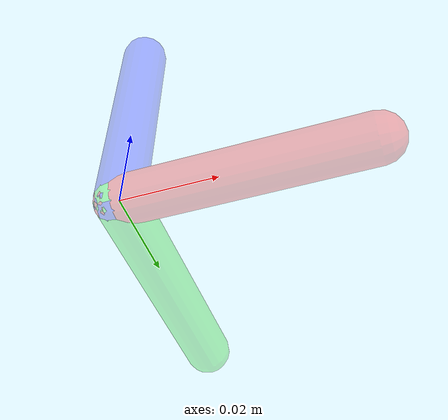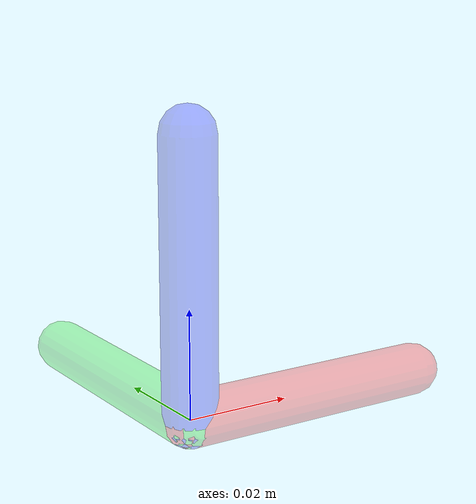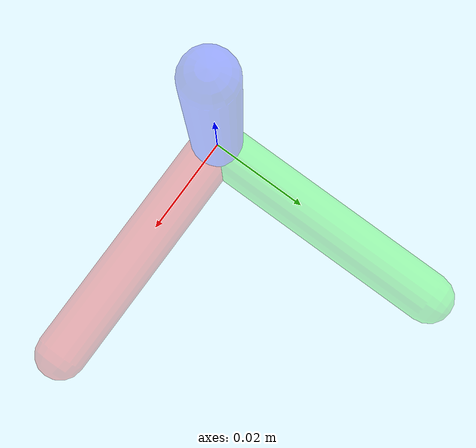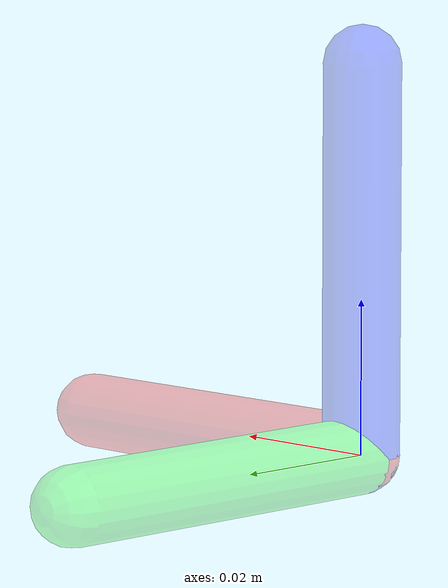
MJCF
<mujoco model="target_frame">
    <worldbody>
        <body name="frame_origin">
            <geom type="capsule" fromto="0 0 0 0.05 0 0" size="0.005" rgba="1 0 0 0.3" contype="0" conaffinity="0"/>
            <geom type="capsule" fromto="0 0 0 0 0.05 0" size="0.005" rgba="0 1 0 0.3" contype="0" conaffinity="0"/>
            <geom type="capsule" fromto="0 0 0 0 0 0.05" size="0.005" rgba="0 0 1 0.3" contype="0" conaffinity="0"/>
        </body>
    </worldbody>
</mujoco>
